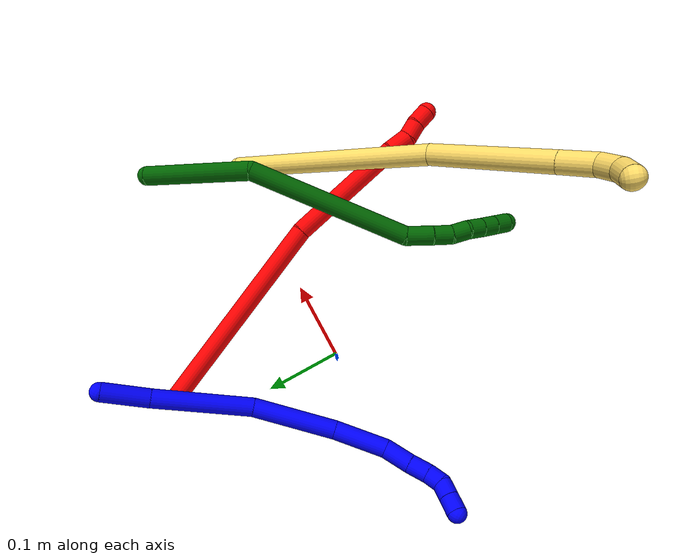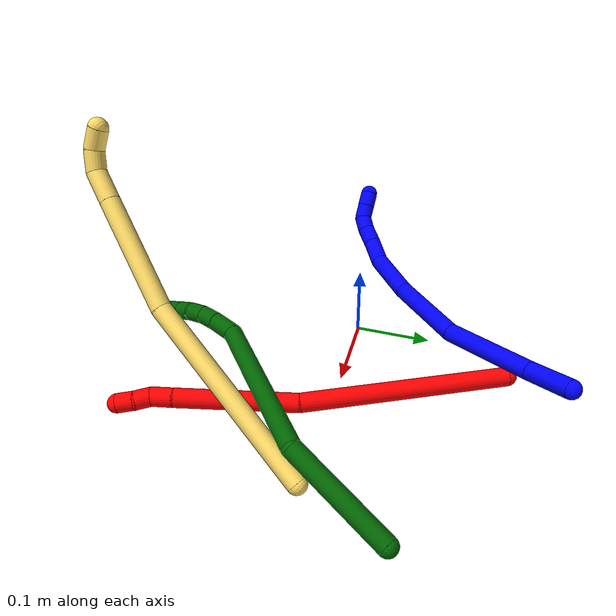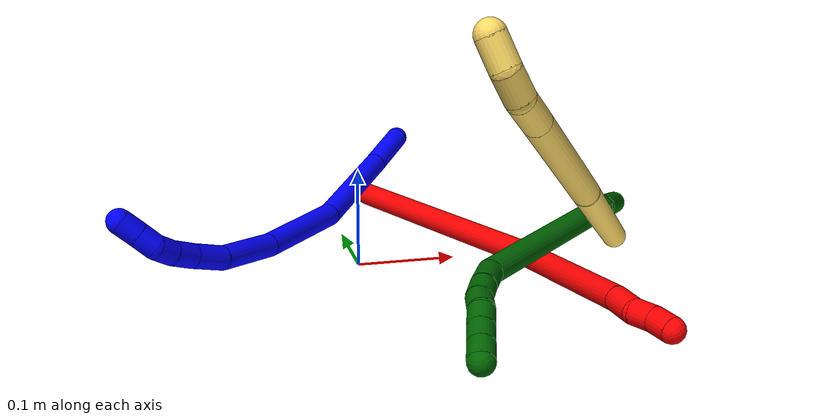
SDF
<sdf version="1.7">
 <world name="default">
  <model name="1">
   <static>0</static>
   <link name="1">
    <collision name="collision-cylinder-e_1_1_4">
     <pose>-0.020033 -0.014274 -0.018842 2.49329 -0.703025 -1.65822</pose>
     <geometry><cylinder><radius>0.0125</radius><length>0.061971</length></cylinder></geometry>
     <surface>
      <friction><ode><mu>1.16</mu><mu2>1.16</mu2><slip1>0</slip1><slip2>0</slip2></ode></friction>
      <contact><ode><kp>1e+06</kp><kd>1</kd><max_vel>0</max_vel><min_depth>0.001</min_depth></ode></contact>
     </surface>
    </collision>
    <visual name="visual-cylinder-e_1_1_4">
     <pose>-0.020033 -0.014274 -0.018842 2.49329 -0.703025 -1.65822</pose>
     <geometry><cylinder><radius>0.0125</radius><length>0.061971</length></cylinder></geometry>
     <material><ambient>0 0 1 1</ambient></material>
    </visual>
    <collision name="collision-cylinder-e_2_4_5">
     <pose>-0.083283 -0.052259 -0.080915 2.63991 -0.71969 -1.94578</pose>
     <geometry><cylinder><radius>0.0125</radius><length>0.131131</length></cylinder></geometry>
     <surface>
      <friction><ode><mu>1.16</mu><mu2>1.16</mu2><slip1>0</slip1><slip2>0</slip2></ode></friction>
      <contact><ode><kp>1e+06</kp><kd>1</kd><max_vel>0</max_vel><min_depth>0.001</min_depth></ode></contact>
     </surface>
    </collision>
    <visual name="visual-cylinder-e_2_4_5">
     <pose>-0.083283 -0.052259 -0.080915 2.63991 -0.71969 -1.94578</pose>
     <geometry><cylinder><radius>0.0125</radius><length>0.131131</length></cylinder></geometry>
     <material><ambient>0 0 1 1</ambient></material>
    </visual>
    <collision name="collision-cylinder-e_3_5_6">
     <pose>-0.15321 -0.09425 -0.169335 2.75718 -0.501236 -1.84162</pose>
     <geometry><cylinder><radius>0.0125</radius><length>0.111169</length></cylinder></geometry>
     <surface>
      <friction><ode><mu>1.16</mu><mu2>1.16</mu2><slip1>0</slip1><slip2>0</slip2></ode></friction>
      <contact><ode><kp>1e+06</kp><kd>1</kd><max_vel>0</max_vel><min_depth>0.001</min_depth></ode></contact>
     </surface>
    </collision>
    <visual name="visual-cylinder-e_3_5_6">
     <pose>-0.15321 -0.09425 -0.169335 2.75718 -0.501236 -1.84162</pose>
     <geometry><cylinder><radius>0.0125</radius><length>0.111169</length></cylinder></geometry>
     <material><ambient>0 0 1 1</ambient></material>
    </visual>
    <collision name="collision-cylinder-e_4_6_7">
     <pose>-0.193377 -0.122099 -0.245818 2.84489 -0.390188 -1.84655</pose>
     <geometry><cylinder><radius>0.0125</radius><length>0.070766</length></cylinder></geometry>
     <surface>
      <friction><ode><mu>1.16</mu><mu2>1.16</mu2><slip1>0</slip1><slip2>0</slip2></ode></friction>
      <contact><ode><kp>1e+06</kp><kd>1</kd><max_vel>0</max_vel><min_depth>0.001</min_depth></ode></contact>
     </surface>
    </collision>
    <visual name="visual-cylinder-e_4_6_7">
     <pose>-0.193377 -0.122099 -0.245818 2.84489 -0.390188 -1.84655</pose>
     <geometry><cylinder><radius>0.0125</radius><length>0.070766</length></cylinder></geometry>
     <material><ambient>0 0 1 1</ambient></material>
    </visual>
    <collision name="collision-cylinder-e_5_7_8">
     <pose>-0.209117 -0.135366 -0.294844 2.9359 -0.125306 -1.09232</pose>
     <geometry><cylinder><radius>0.0125</radius><length>0.036515</length></cylinder></geometry>
     <surface>
      <friction><ode><mu>1.16</mu><mu2>1.16</mu2><slip1>0</slip1><slip2>0</slip2></ode></friction>
      <contact><ode><kp>1e+06</kp><kd>1</kd><max_vel>0</max_vel><min_depth>0.001</min_depth></ode></contact>
     </surface>
    </collision>
    <visual name="visual-cylinder-e_5_7_8">
     <pose>-0.209117 -0.135366 -0.294844 2.9359 -0.125306 -1.09232</pose>
     <geometry><cylinder><radius>0.0125</radius><length>0.036515</length></cylinder></geometry>
     <material><ambient>0 0 1 1</ambient></material>
    </visual>
    <collision name="collision-cylinder-e_6_8_9">
     <pose>-0.21348 -0.140431 -0.325563 3.03683 -0.15802 -1.97179</pose>
     <geometry><cylinder><radius>0.0125</radius><length>0.026447</length></cylinder></geometry>
     <surface>
      <friction><ode><mu>1.16</mu><mu2>1.16</mu2><slip1>0</slip1><slip2>0</slip2></ode></friction>
      <contact><ode><kp>1e+06</kp><kd>1</kd><max_vel>0</max_vel><min_depth>0.001</min_depth></ode></contact>
     </surface>
    </collision>
    <visual name="visual-cylinder-e_6_8_9">
     <pose>-0.21348 -0.140431 -0.325563 3.03683 -0.15802 -1.97179</pose>
     <geometry><cylinder><radius>0.0125</radius><length>0.026447</length></cylinder></geometry>
     <material><ambient>0 0 1 1</ambient></material>
    </visual>
    <collision name="collision-cylinder-e_7_9_10">
     <pose>-0.215477 -0.14206 -0.348834 3.116 0.008103 0.613184</pose>
     <geometry><cylinder><radius>0.0125</radius><length>0.020575</length></cylinder></geometry>
     <surface>
      <friction><ode><mu>1.16</mu><mu2>1.16</mu2><slip1>0</slip1><slip2>0</slip2></ode></friction>
      <contact><ode><kp>1e+06</kp><kd>1</kd><max_vel>0</max_vel><min_depth>0.001</min_depth></ode></contact>
     </surface>
    </collision>
    <visual name="visual-cylinder-e_7_9_10">
     <pose>-0.215477 -0.14206 -0.348834 3.116 0.008103 0.613184</pose>
     <geometry><cylinder><radius>0.0125</radius><length>0.020575</length></cylinder></geometry>
     <material><ambient>0 0 1 1</ambient></material>
    </visual>
    <collision name="collision-cylinder-e_8_10_11">
     <pose>-0.21035 -0.142413 -0.367887 3.13135 0.521946 3.10323</pose>
     <geometry><cylinder><radius>0.0125</radius><length>0.020233</length></cylinder></geometry>
     <surface>
      <friction><ode><mu>1.16</mu><mu2>1.16</mu2><slip1>0</slip1><slip2>0</slip2></ode></friction>
      <contact><ode><kp>1e+06</kp><kd>1</kd><max_vel>0</max_vel><min_depth>0.001</min_depth></ode></contact>
     </surface>
    </collision>
    <visual name="visual-cylinder-e_8_10_11">
     <pose>-0.21035 -0.142413 -0.367887 3.13135 0.521946 3.10323</pose>
     <geometry><cylinder><radius>0.0125</radius><length>0.020233</length></cylinder></geometry>
     <material><ambient>0 0 1 1</ambient></material>
    </visual>
    <collision name="collision-cylinder-e_9_11_2">
     <pose>-0.200061 -0.142861 -0.385857 3.10267 0.517857 2.99489</pose>
     <geometry><cylinder><radius>0.0125</radius><length>0.021193</length></cylinder></geometry>
     <surface>
      <friction><ode><mu>1.16</mu><mu2>1.16</mu2><slip1>0</slip1><slip2>0</slip2></ode></friction>
      <contact><ode><kp>1e+06</kp><kd>1</kd><max_vel>0</max_vel><min_depth>0.001</min_depth></ode></contact>
     </surface>
    </collision>
    <visual name="visual-cylinder-e_9_11_2">
     <pose>-0.200061 -0.142861 -0.385857 3.10267 0.517857 2.99489</pose>
     <geometry><cylinder><radius>0.0125</radius><length>0.021193</length></cylinder></geometry>
     <material><ambient>0 0 1 1</ambient></material>
    </visual>
    <collision name="collision-sphere-2">
     <pose>-0.194815 -0.143219 -0.395057 0 -0 0</pose>
     <geometry><sphere><radius>0.0125</radius></sphere></geometry>
     <surface>
      <friction><ode><mu>1.16</mu><mu2>1.16</mu2><slip1>0</slip1><slip2>0</slip2></ode></friction>
      <contact><ode><kp>1e+06</kp><kd>1</kd><max_vel>0</max_vel><min_depth>0.001</min_depth></ode></contact>
     </surface>
    </collision>
    <visual name="visual-sphere-2">
     <pose>-0.194815 -0.143219 -0.395057 0 -0 0</pose>
     <geometry><sphere><radius>0.0125</radius></sphere></geometry>
     <material><ambient>0 0 1 1</ambient></material>
    </visual>
    <collision name="collision-sphere-11">
     <pose>-0.205306 -0.142503 -0.376656 0 -0 0</pose>
     <geometry><sphere><radius>0.0125</radius></sphere></geometry>
     <surface>
      <friction><ode><mu>1.16</mu><mu2>1.16</mu2><slip1>0</slip1><slip2>0</slip2></ode></friction>
      <contact><ode><kp>1e+06</kp><kd>1</kd><max_vel>0</max_vel><min_depth>0.001</min_depth></ode></contact>
     </surface>
    </collision>
    <visual name="visual-sphere-11">
     <pose>-0.205306 -0.142503 -0.376656 0 -0 0</pose>
     <geometry><sphere><radius>0.0125</radius></sphere></geometry>
     <material><ambient>0 0 1 1</ambient></material>
    </visual>
    <collision name="collision-sphere-10">
     <pose>-0.215394 -0.142323 -0.359118 0 -0 0</pose>
     <geometry><sphere><radius>0.0125</radius></sphere></geometry>
     <surface>
      <friction><ode><mu>1.16</mu><mu2>1.16</mu2><slip1>0</slip1><slip2>0</slip2></ode></friction>
      <contact><ode><kp>1e+06</kp><kd>1</kd><max_vel>0</max_vel><min_depth>0.001</min_depth></ode></contact>
     </surface>
    </collision>
    <visual name="visual-sphere-10">
     <pose>-0.215394 -0.142323 -0.359118 0 -0 0</pose>
     <geometry><sphere><radius>0.0125</radius></sphere></geometry>
     <material><ambient>0 0 1 1</ambient></material>
    </visual>
    <collision name="collision-sphere-9">
     <pose>-0.215561 -0.141797 -0.338551 0 -0 0</pose>
     <geometry><sphere><radius>0.0125</radius></sphere></geometry>
     <surface>
      <friction><ode><mu>1.16</mu><mu2>1.16</mu2><slip1>0</slip1><slip2>0</slip2></ode></friction>
      <contact><ode><kp>1e+06</kp><kd>1</kd><max_vel>0</max_vel><min_depth>0.001</min_depth></ode></contact>
     </surface>
    </collision>
    <visual name="visual-sphere-9">
     <pose>-0.215561 -0.141797 -0.338551 0 -0 0</pose>
     <geometry><sphere><radius>0.0125</radius></sphere></geometry>
     <material><ambient>0 0 1 1</ambient></material>
    </visual>
    <collision name="collision-sphere-4">
     <pose>-0.040066 -0.028548 -0.037685 0 -0 0</pose>
     <geometry><sphere><radius>0.0125</radius></sphere></geometry>
     <surface>
      <friction><ode><mu>1.16</mu><mu2>1.16</mu2><slip1>0</slip1><slip2>0</slip2></ode></friction>
      <contact><ode><kp>1e+06</kp><kd>1</kd><max_vel>0</max_vel><min_depth>0.001</min_depth></ode></contact>
     </surface>
    </collision>
    <visual name="visual-sphere-4">
     <pose>-0.040066 -0.028548 -0.037685 0 -0 0</pose>
     <geometry><sphere><radius>0.0125</radius></sphere></geometry>
     <material><ambient>0 0 1 1</ambient></material>
    </visual>
    <collision name="collision-sphere-1">
     <geometry><sphere><radius>0.0125</radius></sphere></geometry>
     <surface>
      <friction><ode><mu>1.16</mu><mu2>1.16</mu2><slip1>0</slip1><slip2>0</slip2></ode></friction>
      <contact><ode><kp>1e+06</kp><kd>1</kd><max_vel>0</max_vel><min_depth>0.001</min_depth></ode></contact>
     </surface>
    </collision>
    <visual name="visual-sphere-1">
     <geometry><sphere><radius>0.0125</radius></sphere></geometry>
     <material><ambient>0 0 1 1</ambient></material>
    </visual>
    <collision name="collision-sphere-8">
     <pose>-0.211399 -0.139066 -0.312576 0 -0 0</pose>
     <geometry><sphere><radius>0.0125</radius></sphere></geometry>
     <surface>
      <friction><ode><mu>1.16</mu><mu2>1.16</mu2><slip1>0</slip1><slip2>0</slip2></ode></friction>
      <contact><ode><kp>1e+06</kp><kd>1</kd><max_vel>0</max_vel><min_depth>0.001</min_depth></ode></contact>
     </surface>
    </collision>
    <visual name="visual-sphere-8">
     <pose>-0.211399 -0.139066 -0.312576 0 -0 0</pose>
     <geometry><sphere><radius>0.0125</radius></sphere></geometry>
     <material><ambient>0 0 1 1</ambient></material>
    </visual>
    <collision name="collision-sphere-5">
     <pose>-0.126501 -0.07597 -0.124145 0 -0 0</pose>
     <geometry><sphere><radius>0.0125</radius></sphere></geometry>
     <surface>
      <friction><ode><mu>1.16</mu><mu2>1.16</mu2><slip1>0</slip1><slip2>0</slip2></ode></friction>
      <contact><ode><kp>1e+06</kp><kd>1</kd><max_vel>0</max_vel><min_depth>0.001</min_depth></ode></contact>
     </surface>
    </collision>
    <visual name="visual-sphere-5">
     <pose>-0.126501 -0.07597 -0.124145 0 -0 0</pose>
     <geometry><sphere><radius>0.0125</radius></sphere></geometry>
     <material><ambient>0 0 1 1</ambient></material>
    </visual>
    <collision name="collision-sphere-6">
     <pose>-0.179919 -0.112531 -0.214524 0 -0 0</pose>
     <geometry><sphere><radius>0.0125</radius></sphere></geometry>
     <surface>
      <friction><ode><mu>1.16</mu><mu2>1.16</mu2><slip1>0</slip1><slip2>0</slip2></ode></friction>
      <contact><ode><kp>1e+06</kp><kd>1</kd><max_vel>0</max_vel><min_depth>0.001</min_depth></ode></contact>
     </surface>
    </collision>
    <visual name="visual-sphere-6">
     <pose>-0.179919 -0.112531 -0.214524 0 -0 0</pose>
     <geometry><sphere><radius>0.0125</radius></sphere></geometry>
     <material><ambient>0 0 1 1</ambient></material>
    </visual>
    <collision name="collision-sphere-7">
     <pose>-0.206835 -0.131666 -0.277111 0 -0 0</pose>
     <geometry><sphere><radius>0.0125</radius></sphere></geometry>
     <surface>
      <friction><ode><mu>1.16</mu><mu2>1.16</mu2><slip1>0</slip1><slip2>0</slip2></ode></friction>
      <contact><ode><kp>1e+06</kp><kd>1</kd><max_vel>0</max_vel><min_depth>0.001</min_depth></ode></contact>
     </surface>
    </collision>
    <visual name="visual-sphere-7">
     <pose>-0.206835 -0.131666 -0.277111 0 -0 0</pose>
     <geometry><sphere><radius>0.0125</radius></sphere></geometry>
     <material><ambient>0 0 1 1</ambient></material>
    </visual>
    <inertial>
     <pose>-0.138181 -0.088689 -0.180346 0 -0 0</pose>
     <mass>0.5</mass>
     <inertia>
      <ixx>-0.000393</ixx>
      <ixy>0</ixy>
      <ixz>0</ixz>
      <iyy>-0.000107</iyy>
      <iyz>0</iyz>
      <izz>0.000309</izz>
     </inertia>
    </inertial>
   </link>
   <pose>0.103023 0.278502 0.062443 2.1897 -0.462653 1.82035</pose>
  </model>
  <model name="2">
   <static>0</static>
   <link name="2">
    <collision name="collision-cylinder-e_1_1_4">
     <pose>0.051498 -0.124496 0.017144 1.43395 0.388915 0.340052</pose>
     <geometry><cylinder><radius>0.0125</radius><length>0.271627</length></cylinder></geometry>
     <surface>
      <friction><ode><mu>1.16</mu><mu2>1.16</mu2><slip1>0</slip1><slip2>0</slip2></ode></friction>
      <contact><ode><kp>1e+06</kp><kd>1</kd><max_vel>0</max_vel><min_depth>0.001</min_depth></ode></contact>
     </surface>
    </collision>
    <visual name="visual-cylinder-e_1_1_4">
     <pose>0.051498 -0.124496 0.017144 1.43395 0.388915 0.340052</pose>
     <geometry><cylinder><radius>0.0125</radius><length>0.271627</length></cylinder></geometry>
     <material><ambient>1 0 0 1</ambient></material>
    </visual>
    <collision name="collision-cylinder-e_2_4_5">
     <pose>0.125122 -0.324034 0.031352 1.6099 0.286512 0.297776</pose>
     <geometry><cylinder><radius>0.0125</radius><length>0.156581</length></cylinder></geometry>
     <surface>
      <friction><ode><mu>1.16</mu><mu2>1.16</mu2><slip1>0</slip1><slip2>0</slip2></ode></friction>
      <contact><ode><kp>1e+06</kp><kd>1</kd><max_vel>0</max_vel><min_depth>0.001</min_depth></ode></contact>
     </surface>
    </collision>
    <visual name="visual-cylinder-e_2_4_5">
     <pose>0.125122 -0.324034 0.031352 1.6099 0.286512 0.297776</pose>
     <geometry><cylinder><radius>0.0125</radius><length>0.156581</length></cylinder></geometry>
     <material><ambient>1 0 0 1</ambient></material>
    </visual>
    <collision name="collision-cylinder-e_3_5_6">
     <pose>0.151898 -0.412584 0.026253 1.72962 0.327641 0.383017</pose>
     <geometry><cylinder><radius>0.0125</radius><length>0.028898</length></cylinder></geometry>
     <surface>
      <friction><ode><mu>1.16</mu><mu2>1.16</mu2><slip1>0</slip1><slip2>0</slip2></ode></friction>
      <contact><ode><kp>1e+06</kp><kd>1</kd><max_vel>0</max_vel><min_depth>0.001</min_depth></ode></contact>
     </surface>
    </collision>
    <visual name="visual-cylinder-e_3_5_6">
     <pose>0.151898 -0.412584 0.026253 1.72962 0.327641 0.383017</pose>
     <geometry><cylinder><radius>0.0125</radius><length>0.028898</length></cylinder></geometry>
     <material><ambient>1 0 0 1</ambient></material>
    </visual>
    <collision name="collision-cylinder-e_4_6_7">
     <pose>0.16137 -0.435202 0.026253 1.33757 0.475612 0.378528</pose>
     <geometry><cylinder><radius>0.0125</radius><length>0.021064</length></cylinder></geometry>
     <surface>
      <friction><ode><mu>1.16</mu><mu2>1.16</mu2><slip1>0</slip1><slip2>0</slip2></ode></friction>
      <contact><ode><kp>1e+06</kp><kd>1</kd><max_vel>0</max_vel><min_depth>0.001</min_depth></ode></contact>
     </surface>
    </collision>
    <visual name="visual-cylinder-e_4_6_7">
     <pose>0.16137 -0.435202 0.026253 1.33757 0.475612 0.378528</pose>
     <geometry><cylinder><radius>0.0125</radius><length>0.021064</length></cylinder></geometry>
     <material><ambient>1 0 0 1</ambient></material>
    </visual>
    <collision name="collision-cylinder-e_5_7_2">
     <pose>0.171191 -0.454014 0.028487 1.56355 0.475646 0.472341</pose>
     <geometry><cylinder><radius>0.0125</radius><length>0.02183</length></cylinder></geometry>
     <surface>
      <friction><ode><mu>1.16</mu><mu2>1.16</mu2><slip1>0</slip1><slip2>0</slip2></ode></friction>
      <contact><ode><kp>1e+06</kp><kd>1</kd><max_vel>0</max_vel><min_depth>0.001</min_depth></ode></contact>
     </surface>
    </collision>
    <visual name="visual-cylinder-e_5_7_2">
     <pose>0.171191 -0.454014 0.028487 1.56355 0.475646 0.472341</pose>
     <geometry><cylinder><radius>0.0125</radius><length>0.02183</length></cylinder></geometry>
     <material><ambient>1 0 0 1</ambient></material>
    </visual>
    <collision name="collision-sphere-2">
     <pose>0.176189 -0.463717 0.028558 0 -0 0</pose>
     <geometry><sphere><radius>0.0125</radius></sphere></geometry>
     <surface>
      <friction><ode><mu>1.16</mu><mu2>1.16</mu2><slip1>0</slip1><slip2>0</slip2></ode></friction>
      <contact><ode><kp>1e+06</kp><kd>1</kd><max_vel>0</max_vel><min_depth>0.001</min_depth></ode></contact>
     </surface>
    </collision>
    <visual name="visual-sphere-2">
     <pose>0.176189 -0.463717 0.028558 0 -0 0</pose>
     <geometry><sphere><radius>0.0125</radius></sphere></geometry>
     <material><ambient>1 0 0 1</ambient></material>
    </visual>
    <collision name="collision-sphere-7">
     <pose>0.166192 -0.444311 0.028417 0 -0 0</pose>
     <geometry><sphere><radius>0.0125</radius></sphere></geometry>
     <surface>
      <friction><ode><mu>1.16</mu><mu2>1.16</mu2><slip1>0</slip1><slip2>0</slip2></ode></friction>
      <contact><ode><kp>1e+06</kp><kd>1</kd><max_vel>0</max_vel><min_depth>0.001</min_depth></ode></contact>
     </surface>
    </collision>
    <visual name="visual-sphere-7">
     <pose>0.166192 -0.444311 0.028417 0 -0 0</pose>
     <geometry><sphere><radius>0.0125</radius></sphere></geometry>
     <material><ambient>1 0 0 1</ambient></material>
    </visual>
    <collision name="collision-sphere-6">
     <pose>0.156548 -0.426092 0.024089 0 -0 0</pose>
     <geometry><sphere><radius>0.0125</radius></sphere></geometry>
     <surface>
      <friction><ode><mu>1.16</mu><mu2>1.16</mu2><slip1>0</slip1><slip2>0</slip2></ode></friction>
      <contact><ode><kp>1e+06</kp><kd>1</kd><max_vel>0</max_vel><min_depth>0.001</min_depth></ode></contact>
     </surface>
    </collision>
    <visual name="visual-sphere-6">
     <pose>0.156548 -0.426092 0.024089 0 -0 0</pose>
     <geometry><sphere><radius>0.0125</radius></sphere></geometry>
     <material><ambient>1 0 0 1</ambient></material>
    </visual>
    <collision name="collision-sphere-5">
     <pose>0.147248 -0.399076 0.028416 0 -0 0</pose>
     <geometry><sphere><radius>0.0125</radius></sphere></geometry>
     <surface>
      <friction><ode><mu>1.16</mu><mu2>1.16</mu2><slip1>0</slip1><slip2>0</slip2></ode></friction>
      <contact><ode><kp>1e+06</kp><kd>1</kd><max_vel>0</max_vel><min_depth>0.001</min_depth></ode></contact>
     </surface>
    </collision>
    <visual name="visual-sphere-5">
     <pose>0.147248 -0.399076 0.028416 0 -0 0</pose>
     <geometry><sphere><radius>0.0125</radius></sphere></geometry>
     <material><ambient>1 0 0 1</ambient></material>
    </visual>
    <collision name="collision-sphere-1">
     <geometry><sphere><radius>0.0125</radius></sphere></geometry>
     <surface>
      <friction><ode><mu>1.16</mu><mu2>1.16</mu2><slip1>0</slip1><slip2>0</slip2></ode></friction>
      <contact><ode><kp>1e+06</kp><kd>1</kd><max_vel>0</max_vel><min_depth>0.001</min_depth></ode></contact>
     </surface>
    </collision>
    <visual name="visual-sphere-1">
     <geometry><sphere><radius>0.0125</radius></sphere></geometry>
     <material><ambient>1 0 0 1</ambient></material>
    </visual>
    <collision name="collision-sphere-4">
     <pose>0.102997 -0.248992 0.034288 0 -0 0</pose>
     <geometry><sphere><radius>0.0125</radius></sphere></geometry>
     <surface>
      <friction><ode><mu>1.16</mu><mu2>1.16</mu2><slip1>0</slip1><slip2>0</slip2></ode></friction>
      <contact><ode><kp>1e+06</kp><kd>1</kd><max_vel>0</max_vel><min_depth>0.001</min_depth></ode></contact>
     </surface>
    </collision>
    <visual name="visual-sphere-4">
     <pose>0.102997 -0.248992 0.034288 0 -0 0</pose>
     <geometry><sphere><radius>0.0125</radius></sphere></geometry>
     <material><ambient>1 0 0 1</ambient></material>
    </visual>
    <inertial>
     <pose>0.090212 -0.23111 0.022999 0 -0 0</pose>
     <mass>0.5</mass>
     <inertia>
      <ixx>0.002397</ixx>
      <ixy>0</ixy>
      <ixz>0</ixz>
      <iyy>0.001019</iyy>
      <iyz>0</iyz>
      <izz>0.001129</izz>
     </inertia>
    </inertial>
   </link>
   <pose>0.051796 0.209987 0.011499 -0.666381 1.05061 -0.443627</pose>
  </model>
  <model name="5">
   <static>0</static>
   <link name="5">
    <collision name="collision-cylinder-e_1_1_4">
     <pose>-0.012917 -0.023691 0.12681 0.18469 -0.099799 -0.00925</pose>
     <geometry><cylinder><radius>0.0125</radius><length>0.259298</length></cylinder></geometry>
     <surface>
      <friction><ode><mu>1.16</mu><mu2>1.16</mu2><slip1>0</slip1><slip2>0</slip2></ode></friction>
      <contact><ode><kp>1e+06</kp><kd>1</kd><max_vel>0</max_vel><min_depth>0.001</min_depth></ode></contact>
     </surface>
    </collision>
    <visual name="visual-cylinder-e_1_1_4">
     <pose>-0.012917 -0.023691 0.12681 0.18469 -0.099799 -0.00925</pose>
     <geometry><cylinder><radius>0.0125</radius><length>0.259298</length></cylinder></geometry>
     <material><ambient>1 0.858824 0.4 1</ambient></material>
    </visual>
    <collision name="collision-cylinder-e_2_4_5">
     <pose>-0.04511 -0.071771 0.319924 0.352487 -0.266355 -0.047709</pose>
     <geometry><cylinder><radius>0.0125</radius><length>0.14646</length></cylinder></geometry>
     <surface>
      <friction><ode><mu>1.16</mu><mu2>1.16</mu2><slip1>0</slip1><slip2>0</slip2></ode></friction>
      <contact><ode><kp>1e+06</kp><kd>1</kd><max_vel>0</max_vel><min_depth>0.001</min_depth></ode></contact>
     </surface>
    </collision>
    <visual name="visual-cylinder-e_2_4_5">
     <pose>-0.04511 -0.071771 0.319924 0.352487 -0.266355 -0.047709</pose>
     <geometry><cylinder><radius>0.0125</radius><length>0.14646</length></cylinder></geometry>
     <material><ambient>1 0.858824 0.4 1</ambient></material>
    </visual>
    <collision name="collision-cylinder-e_3_5_6">
     <pose>-0.069685 -0.103036 0.404531 0.359304 -0.264705 -0.048346</pose>
     <geometry><cylinder><radius>0.0125</radius><length>0.040514</length></cylinder></geometry>
     <surface>
      <friction><ode><mu>1.16</mu><mu2>1.16</mu2><slip1>0</slip1><slip2>0</slip2></ode></friction>
      <contact><ode><kp>1e+06</kp><kd>1</kd><max_vel>0</max_vel><min_depth>0.001</min_depth></ode></contact>
     </surface>
    </collision>
    <visual name="visual-cylinder-e_3_5_6">
     <pose>-0.069685 -0.103036 0.404531 0.359304 -0.264705 -0.048346</pose>
     <geometry><cylinder><radius>0.0125</radius><length>0.040514</length></cylinder></geometry>
     <material><ambient>1 0.858824 0.4 1</ambient></material>
    </visual>
    <collision name="collision-cylinder-e_4_6_7">
     <pose>-0.083579 -0.116313 0.430891 0.671497 -0.695757 -0.251746</pose>
     <geometry><cylinder><radius>0.0125</radius><length>0.026815</length></cylinder></geometry>
     <surface>
      <friction><ode><mu>1.16</mu><mu2>1.16</mu2><slip1>0</slip1><slip2>0</slip2></ode></friction>
      <contact><ode><kp>1e+06</kp><kd>1</kd><max_vel>0</max_vel><min_depth>0.001</min_depth></ode></contact>
     </surface>
    </collision>
    <visual name="visual-cylinder-e_4_6_7">
     <pose>-0.083579 -0.116313 0.430891 0.671497 -0.695757 -0.251746</pose>
     <geometry><cylinder><radius>0.0125</radius><length>0.026815</length></cylinder></geometry>
     <material><ambient>1 0.858824 0.4 1</ambient></material>
    </visual>
    <collision name="collision-cylinder-e_5_7_2">
     <pose>-0.103301 -0.12977 0.441682 1.20102 -0.973711 -0.695619</pose>
     <geometry><cylinder><radius>0.0125</radius><length>0.026913</length></cylinder></geometry>
     <surface>
      <friction><ode><mu>1.16</mu><mu2>1.16</mu2><slip1>0</slip1><slip2>0</slip2></ode></friction>
      <contact><ode><kp>1e+06</kp><kd>1</kd><max_vel>0</max_vel><min_depth>0.001</min_depth></ode></contact>
     </surface>
    </collision>
    <visual name="visual-cylinder-e_5_7_2">
     <pose>-0.103301 -0.12977 0.441682 1.20102 -0.973711 -0.695619</pose>
     <geometry><cylinder><radius>0.0125</radius><length>0.026913</length></cylinder></geometry>
     <material><ambient>1 0.858824 0.4 1</ambient></material>
    </visual>
    <collision name="collision-sphere-2">
     <pose>-0.114429 -0.136824 0.444416 0 -0 0</pose>
     <geometry><sphere><radius>0.0125</radius></sphere></geometry>
     <surface>
      <friction><ode><mu>1.16</mu><mu2>1.16</mu2><slip1>0</slip1><slip2>0</slip2></ode></friction>
      <contact><ode><kp>1e+06</kp><kd>1</kd><max_vel>0</max_vel><min_depth>0.001</min_depth></ode></contact>
     </surface>
    </collision>
    <visual name="visual-sphere-2">
     <pose>-0.114429 -0.136824 0.444416 0 -0 0</pose>
     <geometry><sphere><radius>0.0125</radius></sphere></geometry>
     <material><ambient>1 0.858824 0.4 1</ambient></material>
    </visual>
    <collision name="collision-sphere-7">
     <pose>-0.092173 -0.122716 0.438948 0 -0 0</pose>
     <geometry><sphere><radius>0.0125</radius></sphere></geometry>
     <surface>
      <friction><ode><mu>1.16</mu><mu2>1.16</mu2><slip1>0</slip1><slip2>0</slip2></ode></friction>
      <contact><ode><kp>1e+06</kp><kd>1</kd><max_vel>0</max_vel><min_depth>0.001</min_depth></ode></contact>
     </surface>
    </collision>
    <visual name="visual-sphere-7">
     <pose>-0.092173 -0.122716 0.438948 0 -0 0</pose>
     <geometry><sphere><radius>0.0125</radius></sphere></geometry>
     <material><ambient>1 0.858824 0.4 1</ambient></material>
    </visual>
    <collision name="collision-sphere-6">
     <pose>-0.074985 -0.10991 0.422834 0 -0 0</pose>
     <geometry><sphere><radius>0.0125</radius></sphere></geometry>
     <surface>
      <friction><ode><mu>1.16</mu><mu2>1.16</mu2><slip1>0</slip1><slip2>0</slip2></ode></friction>
      <contact><ode><kp>1e+06</kp><kd>1</kd><max_vel>0</max_vel><min_depth>0.001</min_depth></ode></contact>
     </surface>
    </collision>
    <visual name="visual-sphere-6">
     <pose>-0.074985 -0.10991 0.422834 0 -0 0</pose>
     <geometry><sphere><radius>0.0125</radius></sphere></geometry>
     <material><ambient>1 0.858824 0.4 1</ambient></material>
    </visual>
    <collision name="collision-sphere-5">
     <pose>-0.064386 -0.096161 0.386228 0 -0 0</pose>
     <geometry><sphere><radius>0.0125</radius></sphere></geometry>
     <surface>
      <friction><ode><mu>1.16</mu><mu2>1.16</mu2><slip1>0</slip1><slip2>0</slip2></ode></friction>
      <contact><ode><kp>1e+06</kp><kd>1</kd><max_vel>0</max_vel><min_depth>0.001</min_depth></ode></contact>
     </surface>
    </collision>
    <visual name="visual-sphere-5">
     <pose>-0.064386 -0.096161 0.386228 0 -0 0</pose>
     <geometry><sphere><radius>0.0125</radius></sphere></geometry>
     <material><ambient>1 0.858824 0.4 1</ambient></material>
    </visual>
    <collision name="collision-sphere-1">
     <geometry><sphere><radius>0.0125</radius></sphere></geometry>
     <surface>
      <friction><ode><mu>1.16</mu><mu2>1.16</mu2><slip1>0</slip1><slip2>0</slip2></ode></friction>
      <contact><ode><kp>1e+06</kp><kd>1</kd><max_vel>0</max_vel><min_depth>0.001</min_depth></ode></contact>
     </surface>
    </collision>
    <visual name="visual-sphere-1">
     <geometry><sphere><radius>0.0125</radius></sphere></geometry>
     <material><ambient>1 0.858824 0.4 1</ambient></material>
    </visual>
    <collision name="collision-sphere-4">
     <pose>-0.025835 -0.047381 0.25362 0 -0 0</pose>
     <geometry><sphere><radius>0.0125</radius></sphere></geometry>
     <surface>
      <friction><ode><mu>1.16</mu><mu2>1.16</mu2><slip1>0</slip1><slip2>0</slip2></ode></friction>
      <contact><ode><kp>1e+06</kp><kd>1</kd><max_vel>0</max_vel><min_depth>0.001</min_depth></ode></contact>
     </surface>
    </collision>
    <visual name="visual-sphere-4">
     <pose>-0.025835 -0.047381 0.25362 0 -0 0</pose>
     <geometry><sphere><radius>0.0125</radius></sphere></geometry>
     <material><ambient>1 0.858824 0.4 1</ambient></material>
    </visual>
    <inertial>
     <pose>-0.035602 -0.054881 0.239136 0 -0 0</pose>
     <mass>0.5</mass>
     <inertia>
      <ixx>0.001687</ixx>
      <ixy>0</ixy>
      <ixz>0</ixz>
      <iyy>0.001663</iyy>
      <iyz>0</iyz>
      <izz>0.000618</izz>
     </inertia>
    </inertial>
   </link>
   <pose>0.278018 -0.005288 0.011491 -0.306126 1.21266 -2.23907</pose>
  </model>
  <model name="6">
   <static>0</static>
   <link name="6">
    <collision name="collision-cylinder-e_1_1_4">
     <pose>-0.03988 -0.037463 -0.047955 2.47841 -0.580125 -1.42846</pose>
     <geometry><cylinder><radius>0.0125</radius><length>0.145513</length></cylinder></geometry>
     <surface>
      <friction><ode><mu>1.16</mu><mu2>1.16</mu2><slip1>0</slip1><slip2>0</slip2></ode></friction>
      <contact><ode><kp>1e+06</kp><kd>1</kd><max_vel>0</max_vel><min_depth>0.001</min_depth></ode></contact>
     </surface>
    </collision>
    <visual name="visual-cylinder-e_1_1_4">
     <pose>-0.03988 -0.037463 -0.047955 2.47841 -0.580125 -1.42846</pose>
     <geometry><cylinder><radius>0.0125</radius><length>0.145513</length></cylinder></geometry>
     <material><ambient>0 0.392157 0.003922 1</ambient></material>
    </visual>
    <collision name="collision-cylinder-e_2_4_5">
     <pose>-0.171278 -0.118619 -0.128086 2.20555 -1.0356 -1.69001</pose>
     <geometry><cylinder><radius>0.0125</radius><length>0.212791</length></cylinder></geometry>
     <surface>
      <friction><ode><mu>1.16</mu><mu2>1.16</mu2><slip1>0</slip1><slip2>0</slip2></ode></friction>
      <contact><ode><kp>1e+06</kp><kd>1</kd><max_vel>0</max_vel><min_depth>0.001</min_depth></ode></contact>
     </surface>
    </collision>
    <visual name="visual-cylinder-e_2_4_5">
     <pose>-0.171278 -0.118619 -0.128086 2.20555 -1.0356 -1.69001</pose>
     <geometry><cylinder><radius>0.0125</radius><length>0.212791</length></cylinder></geometry>
     <material><ambient>0 0.392157 0.003922 1</ambient></material>
    </visual>
    <collision name="collision-cylinder-e_3_5_6">
     <pose>-0.27475 -0.167364 -0.171611 2.7228 -0.766174 -2.17104</pose>
     <geometry><cylinder><radius>0.0125</radius><length>0.03448</length></cylinder></geometry>
     <surface>
      <friction><ode><mu>1.16</mu><mu2>1.16</mu2><slip1>0</slip1><slip2>0</slip2></ode></friction>
      <contact><ode><kp>1e+06</kp><kd>1</kd><max_vel>0</max_vel><min_depth>0.001</min_depth></ode></contact>
     </surface>
    </collision>
    <visual name="visual-cylinder-e_3_5_6">
     <pose>-0.27475 -0.167364 -0.171611 2.7228 -0.766174 -2.17104</pose>
     <geometry><cylinder><radius>0.0125</radius><length>0.03448</length></cylinder></geometry>
     <material><ambient>0 0.392157 0.003922 1</ambient></material>
    </visual>
    <collision name="collision-cylinder-e_4_6_7">
     <pose>-0.295584 -0.174987 -0.191242 2.84055 -0.797317 -2.45035</pose>
     <geometry><cylinder><radius>0.0125</radius><length>0.024825</length></cylinder></geometry>
     <surface>
      <friction><ode><mu>1.16</mu><mu2>1.16</mu2><slip1>0</slip1><slip2>0</slip2></ode></friction>
      <contact><ode><kp>1e+06</kp><kd>1</kd><max_vel>0</max_vel><min_depth>0.001</min_depth></ode></contact>
     </surface>
    </collision>
    <visual name="visual-cylinder-e_4_6_7">
     <pose>-0.295584 -0.174987 -0.191242 2.84055 -0.797317 -2.45035</pose>
     <geometry><cylinder><radius>0.0125</radius><length>0.024825</length></cylinder></geometry>
     <material><ambient>0 0.392157 0.003922 1</ambient></material>
    </visual>
    <collision name="collision-cylinder-e_5_7_8">
     <pose>-0.310714 -0.178551 -0.208517 3.03165 -0.604392 -2.79217</pose>
     <geometry><cylinder><radius>0.0125</radius><length>0.021993</length></cylinder></geometry>
     <surface>
      <friction><ode><mu>1.16</mu><mu2>1.16</mu2><slip1>0</slip1><slip2>0</slip2></ode></friction>
      <contact><ode><kp>1e+06</kp><kd>1</kd><max_vel>0</max_vel><min_depth>0.001</min_depth></ode></contact>
     </surface>
    </collision>
    <visual name="visual-cylinder-e_5_7_8">
     <pose>-0.310714 -0.178551 -0.208517 3.03165 -0.604392 -2.79217</pose>
     <geometry><cylinder><radius>0.0125</radius><length>0.021993</length></cylinder></geometry>
     <material><ambient>0 0.392157 0.003922 1</ambient></material>
    </visual>
    <collision name="collision-cylinder-e_6_8_9">
     <pose>-0.324357 -0.17859 -0.224281 -3.0015 -0.824535 2.82345</pose>
     <geometry><cylinder><radius>0.0125</radius><length>0.02014</length></cylinder></geometry>
     <surface>
      <friction><ode><mu>1.16</mu><mu2>1.16</mu2><slip1>0</slip1><slip2>0</slip2></ode></friction>
      <contact><ode><kp>1e+06</kp><kd>1</kd><max_vel>0</max_vel><min_depth>0.001</min_depth></ode></contact>
     </surface>
    </collision>
    <visual name="visual-cylinder-e_6_8_9">
     <pose>-0.324357 -0.17859 -0.224281 -3.0015 -0.824535 2.82345</pose>
     <geometry><cylinder><radius>0.0125</radius><length>0.02014</length></cylinder></geometry>
     <material><ambient>0 0.392157 0.003922 1</ambient></material>
    </visual>
    <collision name="collision-cylinder-e_7_9_10">
     <pose>-0.338973 -0.176556 -0.237956 -2.98665 -0.801823 2.77933</pose>
     <geometry><cylinder><radius>0.0125</radius><length>0.020102</length></cylinder></geometry>
     <surface>
      <friction><ode><mu>1.16</mu><mu2>1.16</mu2><slip1>0</slip1><slip2>0</slip2></ode></friction>
      <contact><ode><kp>1e+06</kp><kd>1</kd><max_vel>0</max_vel><min_depth>0.001</min_depth></ode></contact>
     </surface>
    </collision>
    <visual name="visual-cylinder-e_7_9_10">
     <pose>-0.338973 -0.176556 -0.237956 -2.98665 -0.801823 2.77933</pose>
     <geometry><cylinder><radius>0.0125</radius><length>0.020102</length></cylinder></geometry>
     <material><ambient>0 0.392157 0.003922 1</ambient></material>
    </visual>
    <collision name="collision-cylinder-e_8_10_2">
     <pose>-0.353422 -0.174418 -0.251807 -2.99014 -0.79938 2.78617</pose>
     <geometry><cylinder><radius>0.0125</radius><length>0.020157</length></cylinder></geometry>
     <surface>
      <friction><ode><mu>1.16</mu><mu2>1.16</mu2><slip1>0</slip1><slip2>0</slip2></ode></friction>
      <contact><ode><kp>1e+06</kp><kd>1</kd><max_vel>0</max_vel><min_depth>0.001</min_depth></ode></contact>
     </surface>
    </collision>
    <visual name="visual-cylinder-e_8_10_2">
     <pose>-0.353422 -0.174418 -0.251807 -2.99014 -0.79938 2.78617</pose>
     <geometry><cylinder><radius>0.0125</radius><length>0.020157</length></cylinder></geometry>
     <material><ambient>0 0.392157 0.003922 1</ambient></material>
    </visual>
    <collision name="collision-sphere-2">
     <pose>-0.360647 -0.173358 -0.258753 0 -0 0</pose>
     <geometry><sphere><radius>0.0125</radius></sphere></geometry>
     <surface>
      <friction><ode><mu>1.16</mu><mu2>1.16</mu2><slip1>0</slip1><slip2>0</slip2></ode></friction>
      <contact><ode><kp>1e+06</kp><kd>1</kd><max_vel>0</max_vel><min_depth>0.001</min_depth></ode></contact>
     </surface>
    </collision>
    <visual name="visual-sphere-2">
     <pose>-0.360647 -0.173358 -0.258753 0 -0 0</pose>
     <geometry><sphere><radius>0.0125</radius></sphere></geometry>
     <material><ambient>0 0.392157 0.003922 1</ambient></material>
    </visual>
    <collision name="collision-sphere-10">
     <pose>-0.346196 -0.175478 -0.244862 0 -0 0</pose>
     <geometry><sphere><radius>0.0125</radius></sphere></geometry>
     <surface>
      <friction><ode><mu>1.16</mu><mu2>1.16</mu2><slip1>0</slip1><slip2>0</slip2></ode></friction>
      <contact><ode><kp>1e+06</kp><kd>1</kd><max_vel>0</max_vel><min_depth>0.001</min_depth></ode></contact>
     </surface>
    </collision>
    <visual name="visual-sphere-10">
     <pose>-0.346196 -0.175478 -0.244862 0 -0 0</pose>
     <geometry><sphere><radius>0.0125</radius></sphere></geometry>
     <material><ambient>0 0.392157 0.003922 1</ambient></material>
    </visual>
    <collision name="collision-sphere-9">
     <pose>-0.33175 -0.177635 -0.23105 0 -0 0</pose>
     <geometry><sphere><radius>0.0125</radius></sphere></geometry>
     <surface>
      <friction><ode><mu>1.16</mu><mu2>1.16</mu2><slip1>0</slip1><slip2>0</slip2></ode></friction>
      <contact><ode><kp>1e+06</kp><kd>1</kd><max_vel>0</max_vel><min_depth>0.001</min_depth></ode></contact>
     </surface>
    </collision>
    <visual name="visual-sphere-9">
     <pose>-0.33175 -0.177635 -0.23105 0 -0 0</pose>
     <geometry><sphere><radius>0.0125</radius></sphere></geometry>
     <material><ambient>0 0.392157 0.003922 1</ambient></material>
    </visual>
    <collision name="collision-sphere-4">
     <pose>-0.07976 -0.074926 -0.095909 0 -0 0</pose>
     <geometry><sphere><radius>0.0125</radius></sphere></geometry>
     <surface>
      <friction><ode><mu>1.16</mu><mu2>1.16</mu2><slip1>0</slip1><slip2>0</slip2></ode></friction>
      <contact><ode><kp>1e+06</kp><kd>1</kd><max_vel>0</max_vel><min_depth>0.001</min_depth></ode></contact>
     </surface>
    </collision>
    <visual name="visual-sphere-4">
     <pose>-0.07976 -0.074926 -0.095909 0 -0 0</pose>
     <geometry><sphere><radius>0.0125</radius></sphere></geometry>
     <material><ambient>0 0.392157 0.003922 1</ambient></material>
    </visual>
    <collision name="collision-sphere-1">
     <geometry><sphere><radius>0.0125</radius></sphere></geometry>
     <surface>
      <friction><ode><mu>1.16</mu><mu2>1.16</mu2><slip1>0</slip1><slip2>0</slip2></ode></friction>
      <contact><ode><kp>1e+06</kp><kd>1</kd><max_vel>0</max_vel><min_depth>0.001</min_depth></ode></contact>
     </surface>
    </collision>
    <visual name="visual-sphere-1">
     <geometry><sphere><radius>0.0125</radius></sphere></geometry>
     <material><ambient>0 0.392157 0.003922 1</ambient></material>
    </visual>
    <collision name="collision-sphere-8">
     <pose>-0.316963 -0.179544 -0.217511 0 -0 0</pose>
     <geometry><sphere><radius>0.0125</radius></sphere></geometry>
     <surface>
      <friction><ode><mu>1.16</mu><mu2>1.16</mu2><slip1>0</slip1><slip2>0</slip2></ode></friction>
      <contact><ode><kp>1e+06</kp><kd>1</kd><max_vel>0</max_vel><min_depth>0.001</min_depth></ode></contact>
     </surface>
    </collision>
    <visual name="visual-sphere-8">
     <pose>-0.316963 -0.179544 -0.217511 0 -0 0</pose>
     <geometry><sphere><radius>0.0125</radius></sphere></geometry>
     <material><ambient>0 0.392157 0.003922 1</ambient></material>
    </visual>
    <collision name="collision-sphere-5">
     <pose>-0.262796 -0.162312 -0.160262 0 -0 0</pose>
     <geometry><sphere><radius>0.0125</radius></sphere></geometry>
     <surface>
      <friction><ode><mu>1.16</mu><mu2>1.16</mu2><slip1>0</slip1><slip2>0</slip2></ode></friction>
      <contact><ode><kp>1e+06</kp><kd>1</kd><max_vel>0</max_vel><min_depth>0.001</min_depth></ode></contact>
     </surface>
    </collision>
    <visual name="visual-sphere-5">
     <pose>-0.262796 -0.162312 -0.160262 0 -0 0</pose>
     <geometry><sphere><radius>0.0125</radius></sphere></geometry>
     <material><ambient>0 0.392157 0.003922 1</ambient></material>
    </visual>
    <collision name="collision-sphere-6">
     <pose>-0.286704 -0.172416 -0.18296 0 -0 0</pose>
     <geometry><sphere><radius>0.0125</radius></sphere></geometry>
     <surface>
      <friction><ode><mu>1.16</mu><mu2>1.16</mu2><slip1>0</slip1><slip2>0</slip2></ode></friction>
      <contact><ode><kp>1e+06</kp><kd>1</kd><max_vel>0</max_vel><min_depth>0.001</min_depth></ode></contact>
     </surface>
    </collision>
    <visual name="visual-sphere-6">
     <pose>-0.286704 -0.172416 -0.18296 0 -0 0</pose>
     <geometry><sphere><radius>0.0125</radius></sphere></geometry>
     <material><ambient>0 0.392157 0.003922 1</ambient></material>
    </visual>
    <collision name="collision-sphere-7">
     <pose>-0.304465 -0.177558 -0.199523 0 -0 0</pose>
     <geometry><sphere><radius>0.0125</radius></sphere></geometry>
     <surface>
      <friction><ode><mu>1.16</mu><mu2>1.16</mu2><slip1>0</slip1><slip2>0</slip2></ode></friction>
      <contact><ode><kp>1e+06</kp><kd>1</kd><max_vel>0</max_vel><min_depth>0.001</min_depth></ode></contact>
     </surface>
    </collision>
    <visual name="visual-sphere-7">
     <pose>-0.304465 -0.177558 -0.199523 0 -0 0</pose>
     <geometry><sphere><radius>0.0125</radius></sphere></geometry>
     <material><ambient>0 0.392157 0.003922 1</ambient></material>
    </visual>
    <inertial>
     <pose>-0.172729 -0.110791 -0.12772 0 -0 0</pose>
     <mass>0.5</mass>
     <inertia><ixx>-0.000685</ixx><ixy>0</ixy><ixz>0</ixz><iyy>4e-05</iyy><iyz>0</iyz><izz>0.0013</izz></inertia>
    </inertial>
   </link>
   <pose>0.325429 0.10719 0.012224 -1.73662 -0.535661 0.449696</pose>
  </model>
 </world>
</sdf>
